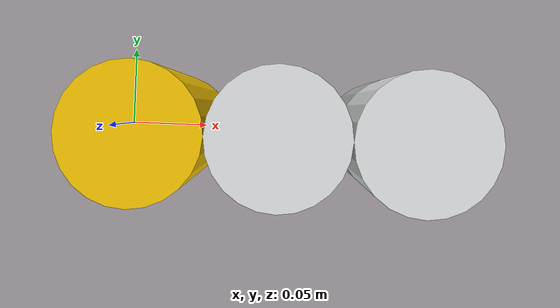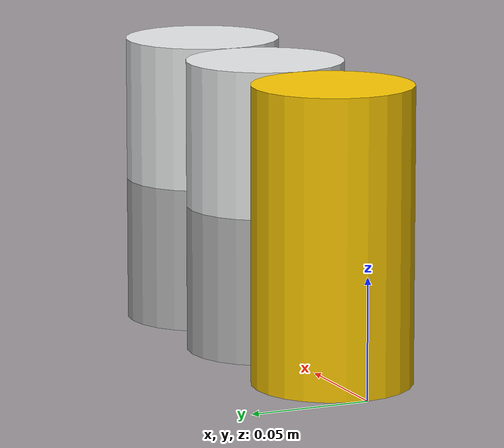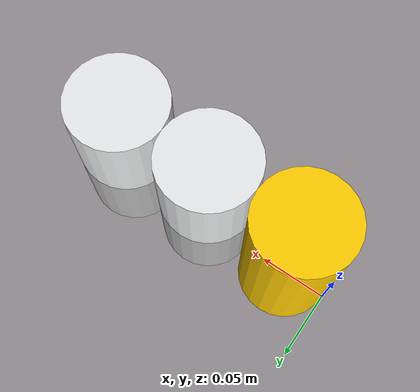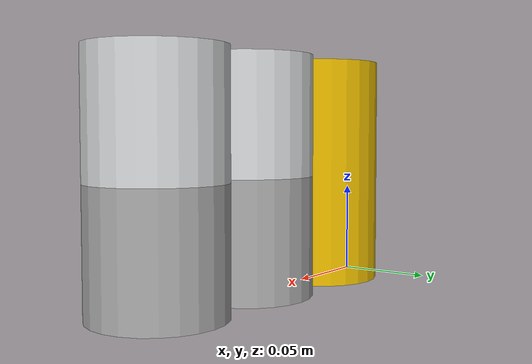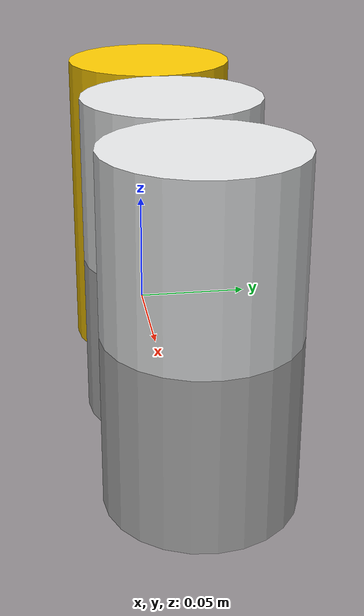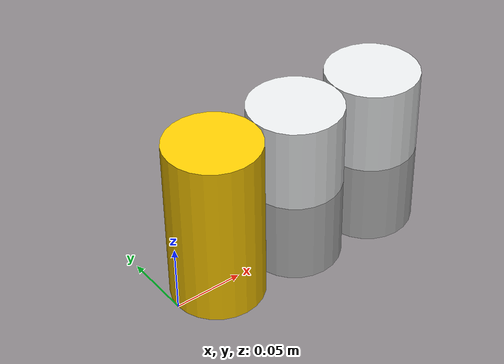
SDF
<?xml version='1.0'?>

<sdf version="1.5">
<model name="3cans_shortcut">
  <pose>0 0 0 0 0 0</pose>

      <include>
        <name>1st_can</name>
        <uri>model://yellow_can</uri>
        <pose>0.0 0 0 0 0 0</pose>
        <static>true</static>
      </include>

      <include>
        <name>2nd_can</name>
        <uri>model://1can</uri>
        <pose>0.066 0 0 0 0 0</pose>
        <static>true</static>
      </include>

      <include>
        <name>3rd_can</name>
        <uri>model://1can</uri>
        <pose>0.132 0 0 0 0 0</pose>
        <static>true</static>
      </include>

  </model>
</sdf>

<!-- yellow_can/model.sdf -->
<sdf version="1.5">
<model name="yellow_can">
  <pose>0 0 0 0 0 0</pose>

      <link name="1st_can_lower">
        <pose>0.033 0 0.061 0 0 0</pose>

        <collision name="collision">
          <geometry>
            <cylinder>
              <radius>0.033</radius>
              <length>0.122</length>
            </cylinder>
          </geometry>
        </collision>

        <visual name="visual">
          <geometry>
            <cylinder>
              <radius>0.033</radius>
              <length>0.122</length>
            </cylinder>
          </geometry>
          <material>
            <ambient>0.8 0.6 0 1</ambient>
            <diffuse>1 0.8 0 1</diffuse>
            <specular>0.5 0.5 0.5 0.8</specular>
            <emissive>0.1 0.1 0.1 1</emissive>
          </material>
        </visual>

      </link>

  </model>
</sdf>

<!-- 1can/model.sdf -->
<sdf version="1.5">
<model name="1can">
  <pose>0 0 0 0 0 0</pose>
     <link name="1st_can_upper">
        <pose>0.033 0 0.0915 0 0 0</pose>

        <collision name="collision">
          <geometry>
            <cylinder>
              <radius>0.033</radius>
              <length>0.061</length>
            </cylinder>
          </geometry>
        </collision>

        <visual name="visual">
          <geometry>
            <cylinder>
              <radius>0.033</radius>
              <length>0.061</length>
            </cylinder>
          </geometry>
          <material>
            <ambient>0.8 0.8 0.8 1</ambient>
            <diffuse>0.913 0.921 0.925 1</diffuse>
            <specular>1.0 1.0 1.0 0.8</specular>
            <emissive>0.0 0.0 0.0 1</emissive>
          </material>
        </visual>

      </link>

      <link name="1st_can_lower">
        <pose>0.033 0 0.0305 0 0 0</pose>

        <collision name="collision">
          <geometry>
            <cylinder>
              <radius>0.033</radius>
              <length>0.061</length>
            </cylinder>
          </geometry>
        </collision>

        <visual name="visual">
          <geometry>
            <cylinder>
              <radius>0.033</radius>
              <length>0.061</length>
            </cylinder>
          </geometry>
          <material>
            <script>
              <uri>model://1can/materials/scripts/tape.material</uri>
              <name>1can/Tape</name>
            </script>
          </material>
        </visual>

      </link>

  </model>
</sdf>
